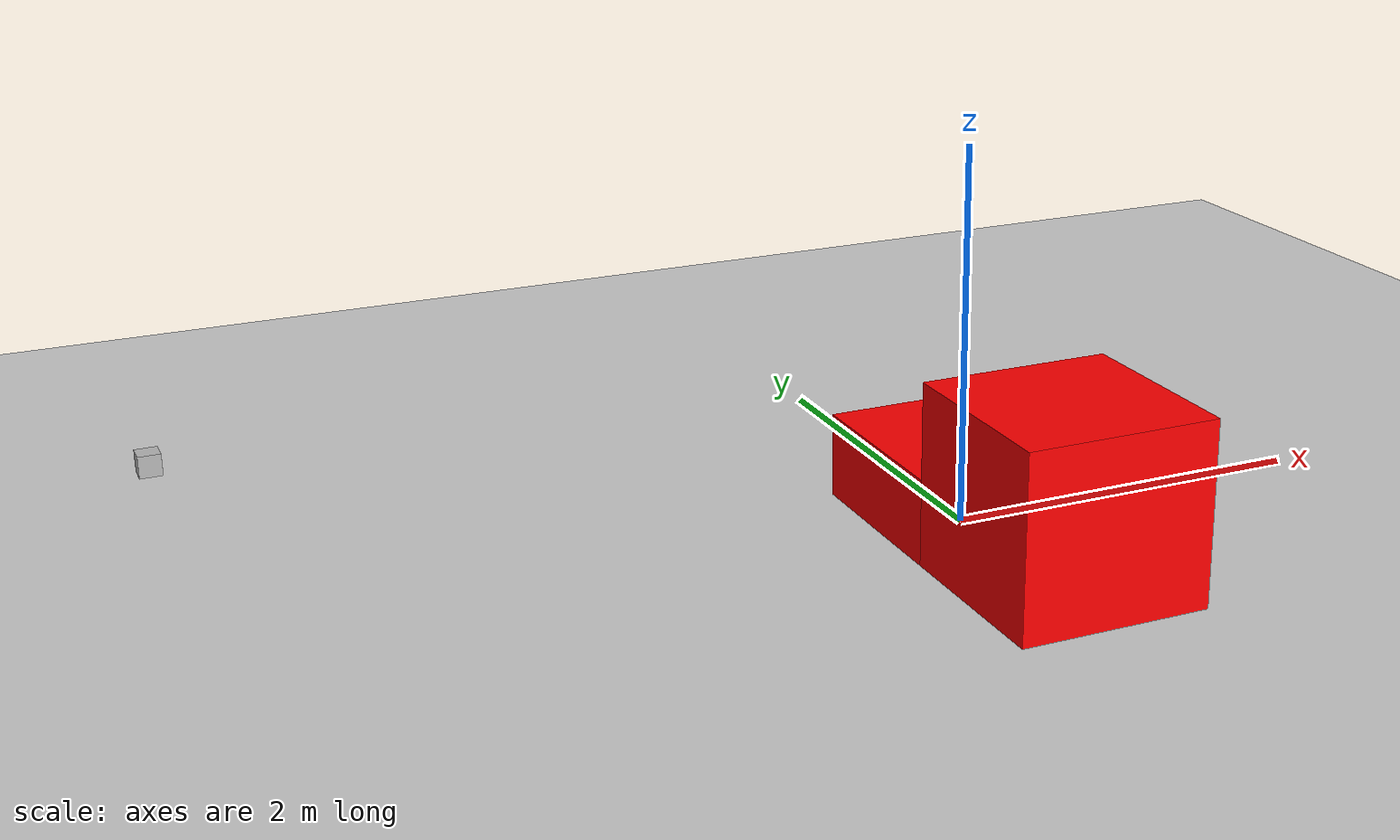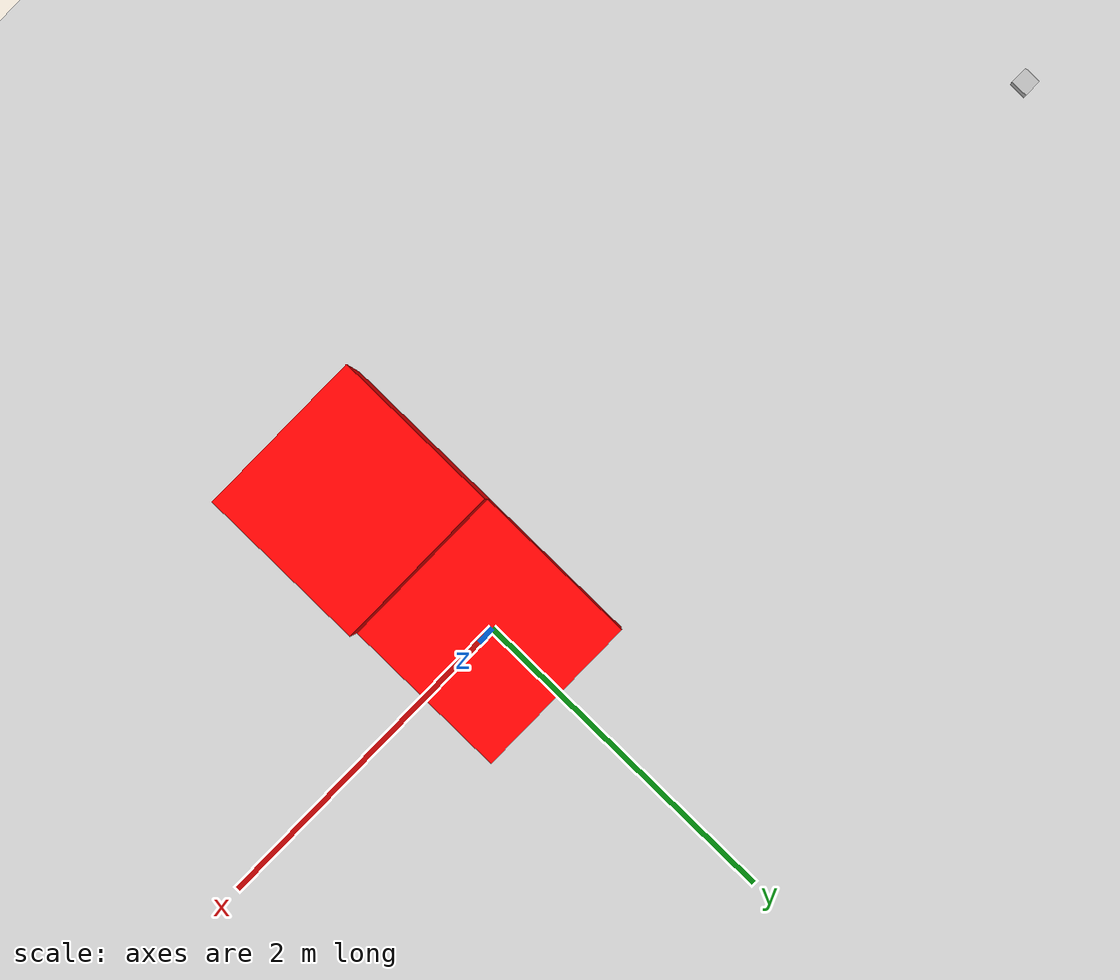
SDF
<sdf version="1.8">
 <world name="lidar_sensor">
  <physics name="1ms" type="ignored">
   <max_step_size>0.001</max_step_size>
   <real_time_factor>1</real_time_factor>
   <real_time_update_rate>1000</real_time_update_rate>
  </physics>
  <plugin name="ignition::gazebo::systems::Physics" filename="ignition-gazebo-physics-system"/>
  <plugin name="ignition::gazebo::systems::Sensors" filename="ignition-gazebo-sensors-system"/>
  <plugin name="ignition::gazebo::systems::UserCommands" filename="ignition-gazebo-user-commands-system"/>
  <plugin name="ignition::gazebo::systems::SceneBroadcaster" filename="ignition-gazebo-scene-broadcaster-system"/>
  <light name="sun" type="directional">
   <pose>0 0 10 0 -0 0</pose>
   <diffuse>0.8 0.8 0.8 1</diffuse>
   <specular>0.2 0.2 0.2 1</specular>
   <attenuation>
    <range>1000</range>
    <constant>0.90000000000000002</constant>
    <linear>0.01</linear>
    <quadratic>0.001</quadratic>
   </attenuation>
   <direction>-0.5 0.1 -0.9</direction>
   <spot><inner_angle>0</inner_angle><outer_angle>0</outer_angle><falloff>0</falloff></spot>
  </light>
  <gravity>0 0 -9.8</gravity>
  <magnetic_field>6e-06 2.3e-05 -4.2e-05</magnetic_field>
  <atmosphere type="adiabatic"/>
  <scene><ambient>0.4 0.4 0.4 1</ambient><background>0.7 0.7 0.7 1</background><shadows>1</shadows></scene>
  <model name="ground_plane">
   <static>1</static>
   <link name="link">
    <collision name="collision"><geometry><box><size>20 20 0.1</size></box></geometry></collision>
    <visual name="visual">
     <geometry><box><size>20 20 0.1</size></box></geometry>
     <material>
      <ambient>0.8 0.8 0.8 1</ambient>
      <diffuse>0.8 0.8 0.8 1</diffuse>
      <specular>0.8 0.8 0.8 1</specular>
     </material>
    </visual>
   </link>
  </model>
  <model name="box">
   <pose>0 -1 0.502701 0 -0 0</pose>
   <link name="box_link">
    <inertial>
     <inertia><ixx>1</ixx><ixy>0</ixy><ixz>0</ixz><iyy>1</iyy><iyz>0</iyz><izz>1</izz></inertia>
     <mass>1</mass>
    </inertial>
    <collision name="box_collision"><geometry><box><size>1 1 1</size></box></geometry></collision>
    <visual name="box_visual">
     <geometry><box><size>1 1 1</size></box></geometry>
     <material><ambient>1 0 0 1</ambient><diffuse>1 0 0 1</diffuse><specular>1 0 0 1</specular></material>
    </visual>
   </link>
  </model>
  <model name="combined_sensors">
   <pose>-4 0 1 0 0 0</pose>
   <link name="link">
    <inertial>
     <mass>0.10000000000000001</mass>
     <inertia>
      <ixx>0.00016666700000000001</ixx>
      <iyy>0.00016666700000000001</iyy>
      <izz>0.00016666700000000001</izz>
      <ixy>0</ixy>
      <ixz>0</ixz>
      <iyz>0</iyz>
     </inertia>
    </inertial>
    <collision name="collision"><geometry><box><size>0.1 0.1 0.1</size></box></geometry></collision>
    <visual name="visual"><geometry><box><size>0.1 0.1 0.1</size></box></geometry></visual>
    <sensor name="camera" type="camera">
     <camera>
      <horizontal_fov>1.0469999999999999</horizontal_fov>
      <image><width>320</width><height>240</height></image>
      <clip><near>0.10000000000000001</near><far>100</far></clip>
     </camera>
     <always_on>1</always_on>
     <update_rate>30</update_rate>
     <visualize>1</visualize>
     <topic>camera</topic>
    </sensor>
    <sensor name="depth_camera" type="depth_camera">
     <update_rate>10</update_rate>
     <topic>depth_camera</topic>
     <enable_metrics>1</enable_metrics>
     <camera>
      <horizontal_fov>1.05</horizontal_fov>
      <image><width>320</width><height>240</height><format>R_FLOAT32</format></image>
      <clip><near>0.10000000000000001</near><far>10</far></clip>
     </camera>
    </sensor>
    <sensor name="rgbd_camera" type="rgbd_camera">
     <camera>
      <horizontal_fov>1.0469999999999999</horizontal_fov>
      <image><width>320</width><height>240</height></image>
      <clip><near>0.10000000000000001</near><far>100</far></clip>
     </camera>
     <always_on>1</always_on>
     <update_rate>30</update_rate>
     <visualize>1</visualize>
     <topic>rgbd_camera</topic>
     <enable_metrics>1</enable_metrics>
    </sensor>
    <sensor name="thermal_camera" type="thermal_camera">
     <camera>
      <horizontal_fov>1.0469999999999999</horizontal_fov>
      <image><width>320</width><height>240</height></image>
      <clip><near>0.10000000000000001</near><far>100</far></clip>
     </camera>
     <always_on>1</always_on>
     <update_rate>30</update_rate>
     <visualize>1</visualize>
     <topic>thermal_camera</topic>
    </sensor>
    <sensor name="gpu_lidar" type="gpu_lidar">
     <topic>lidar</topic>
     <update_rate>10</update_rate>
     <enable_metrics>1</enable_metrics>
     <ray>
      <scan>
       <horizontal>
        <samples>640</samples>
        <resolution>1</resolution>
        <min_angle>-1.396263</min_angle>
        <max_angle>1.396263</max_angle>
       </horizontal>
       <vertical>
        <samples>1</samples>
        <resolution>0.01</resolution>
        <min_angle>0</min_angle>
        <max_angle>0</max_angle>
       </vertical>
      </scan>
      <range><min>0.080000000000000002</min><max>10</max><resolution>0.01</resolution></range>
     </ray>
     <visualize>1</visualize>
     <alwaysOn>1</alwaysOn>
    </sensor>
   </link>
   <static>1</static>
  </model>
  <include><uri>model://fire_generator</uri></include>
 </world>
</sdf>

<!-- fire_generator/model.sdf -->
<sdf version="1.6">
  <model name="fire_generator">
    <pose>0 0 0 0 -1.5707 0</pose>
    <static>true</static>
    <link name="fire_link">
      <particle_emitter name="emitter" type="box">
        <emitting>true</emitting>
        <size>1 1 1 </size>
        <particle_size>0.3 0.3 0.3</particle_size>
        <lifetime>5</lifetime>
        <min_velocity>0.1</min_velocity>
        <max_velocity>0.2</max_velocity>
        <scale_rate>0.5</scale_rate>
        <rate>50</rate>
        <material>
          <diffuse>0.7 0.7 0.7</diffuse>
          <specular>1.0 1.0 1.0</specular>
          <pbr>
            <metal>
              <albedo_map>materials/textures/fire.png</albedo_map>
            </metal>
          </pbr>
        </material>
        <color_range_image>materials/textures/firecolors.png</color_range_image>
      </particle_emitter>
    </link>
    <link name="thermal_link">
    <visual name="fire_visual">
      <geometry>
        <box>
          <size>1 1 1 </size>
        </box>
      </geometry>
      <material>
        <ambient>1 0 0 1</ambient>
        <diffuse>1 0 0 1</diffuse>
        <specular>1 0 0 1</specular>
      </material>
      <plugin filename="ignition-gazebo-thermal-system" name="ignition::gazebo::systems::Thermal">
          <heat_signature>materials/textures/fire_thermal.png</heat_signature>
          <max_temp>1200</max_temp>
        </plugin>
    </visual>
  </link>
    <plugin
      filename="libignition-gazebo-particle-emitter-system.so"
      name="ignition::gazebo::systems::ParticleEmitter">
    </plugin>

  </model>
</sdf>
